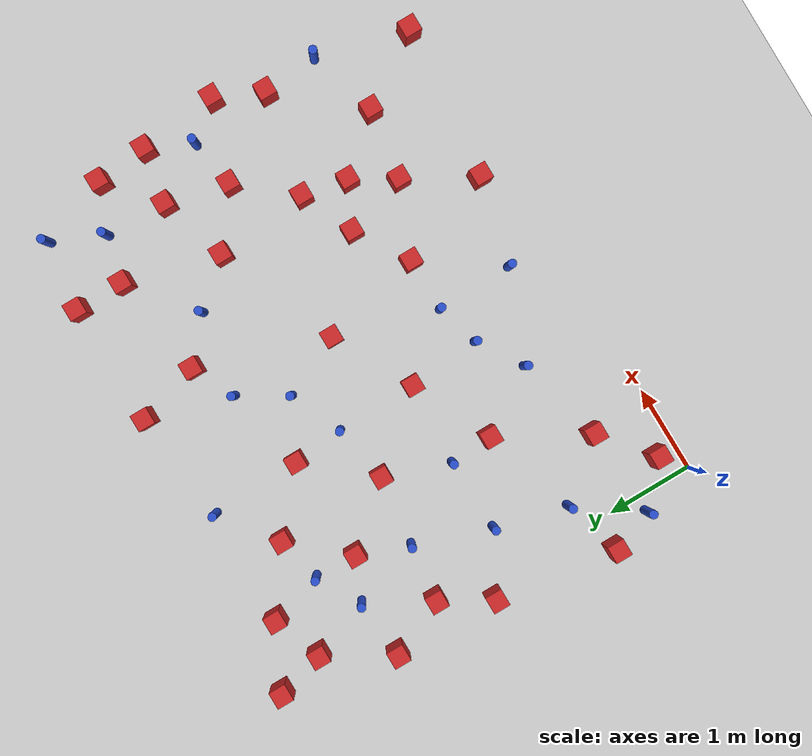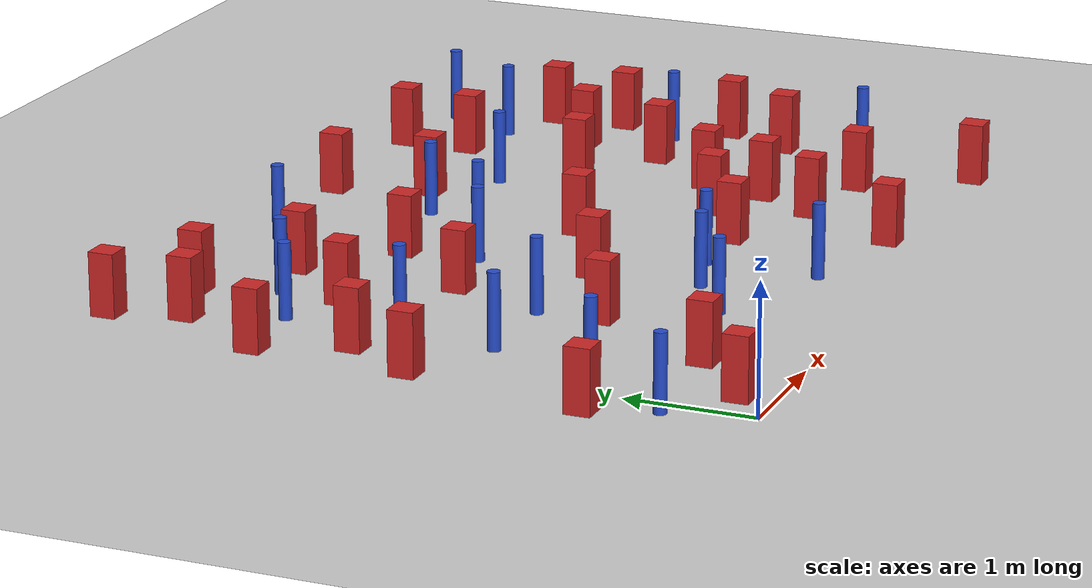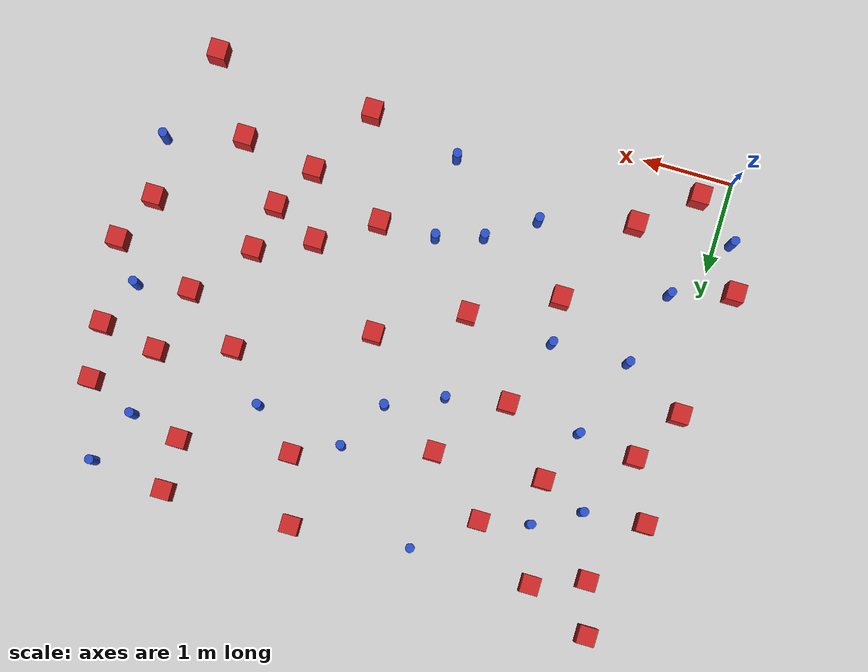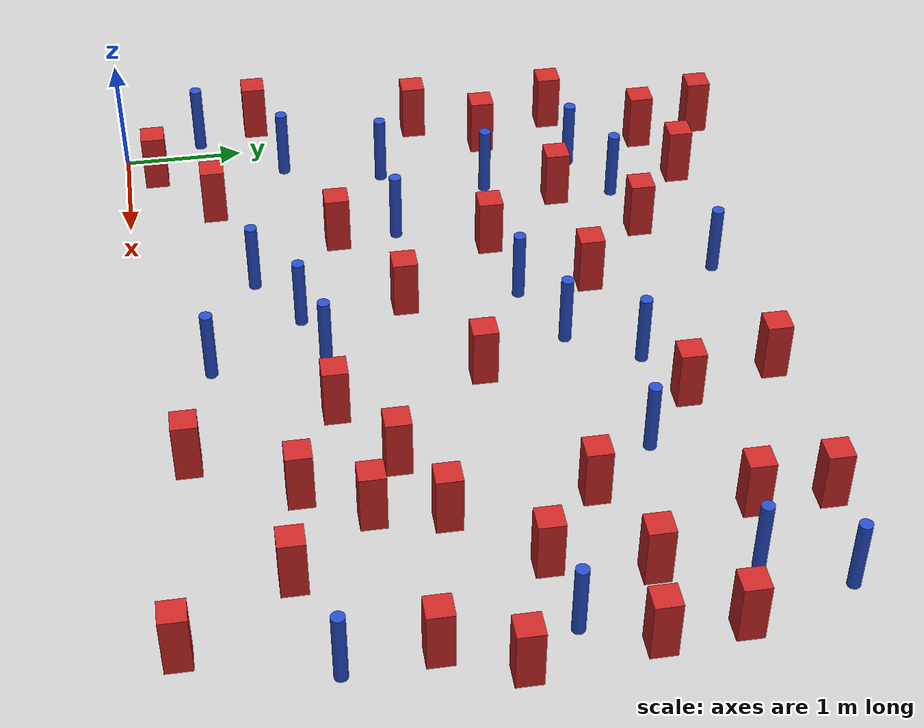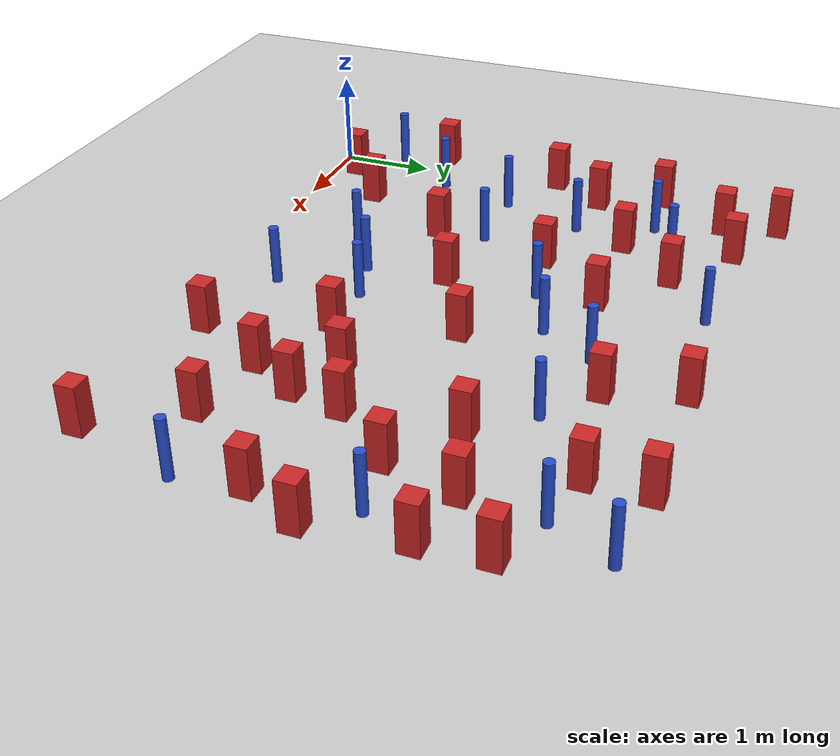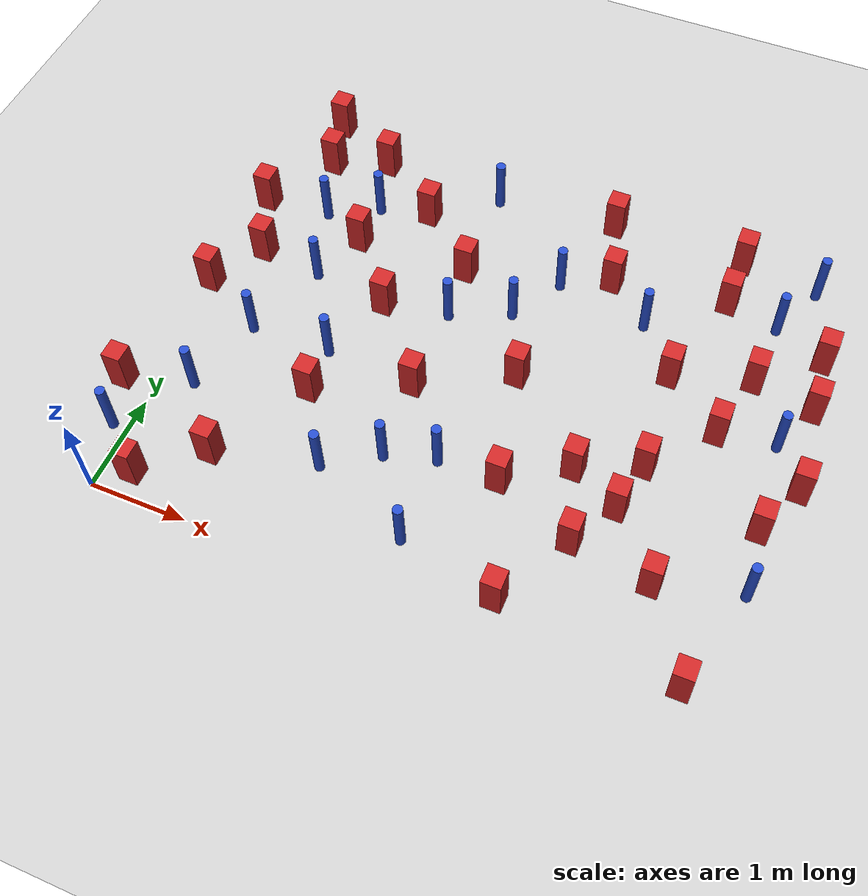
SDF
<sdf version="1.6">
 <world name="default">
  <model name="ground_plane">
   <static>1</static>
   <link name="link">
    <collision name="collision">
     <geometry><plane><normal>0 0 1</normal><size>100 100</size></plane></geometry>
     <surface><friction><ode><mu>100</mu><mu2>50</mu2></ode></friction></surface>
    </collision>
    <visual name="visual">
     <cast_shadows>0</cast_shadows>
     <geometry><plane><normal>0 0 1</normal><size>100 100</size></plane></geometry>
     <material>
      <ambient>1.0 1.0 1.0 1.0</ambient>
      <diffuse>0.8 0.8 0.8 1.0</diffuse>
      <specular>0.01 0.01 0.01 1.000000</specular>
     </material>
    </visual>
   </link>
  </model>
  <model name="square_post_obstacle7">
   <static>true</static>
   <pose>5.32056490058 2.76334823413 -4.36207812815e-07 3.75137919937e-06 9.77721102514e-07 2.47381364184e-05</pose>
   <link name="link">
    <pose>0 0 0.25 0 -0 0</pose>
    <inertial>
     <mass>100</mass>
     <inertia>
      <ixx>0.166667</ixx>
      <ixy>0</ixy>
      <ixz>0</ixz>
      <iyy>0.166667</iyy>
      <iyz>0</iyz>
      <izz>0.166667</izz>
     </inertia>
    </inertial>
    <collision name="collision"><geometry><box><size>.2 .2 .5</size></box></geometry></collision>
    <visual name="visual">
     <geometry><box><size>.2 .2 .5</size></box></geometry>
     <material>
      <script><name>Gazebo/Red</name><uri>file://media/materials/scripts/gazebo.material</uri></script>
     </material>
    </visual>
   </link>
  </model>
  <model name="square_post_obstacle9">
   <static>true</static>
   <pose>1.68778716582 2.98436826261 -4.36207812815e-07 3.75137919937e-06 9.77721102514e-07 2.47381364184e-05</pose>
   <link name="link">
    <pose>0 0 0.25 0 -0 0</pose>
    <inertial>
     <mass>100</mass>
     <inertia>
      <ixx>0.166667</ixx>
      <ixy>0</ixy>
      <ixz>0</ixz>
      <iyy>0.166667</iyy>
      <iyz>0</iyz>
      <izz>0.166667</izz>
     </inertia>
    </inertial>
    <collision name="collision"><geometry><box><size>.2 .2 .5</size></box></geometry></collision>
    <visual name="visual">
     <geometry><box><size>.2 .2 .5</size></box></geometry>
     <material>
      <script><name>Gazebo/Red</name><uri>file://media/materials/scripts/gazebo.material</uri></script>
     </material>
    </visual>
   </link>
  </model>
  <model name="square_post_obstacle17">
   <static>true</static>
   <pose>3.2908703948 2.66182966471 -4.36207812815e-07 3.75137919937e-06 9.77721102514e-07 2.47381364184e-05</pose>
   <link name="link">
    <pose>0 0 0.25 0 -0 0</pose>
    <inertial>
     <mass>100</mass>
     <inertia>
      <ixx>0.166667</ixx>
      <ixy>0</ixy>
      <ixz>0</ixz>
      <iyy>0.166667</iyy>
      <iyz>0</iyz>
      <izz>0.166667</izz>
     </inertia>
    </inertial>
    <collision name="collision"><geometry><box><size>.2 .2 .5</size></box></geometry></collision>
    <visual name="visual">
     <geometry><box><size>.2 .2 .5</size></box></geometry>
     <material>
      <script><name>Gazebo/Red</name><uri>file://media/materials/scripts/gazebo.material</uri></script>
     </material>
    </visual>
   </link>
  </model>
  <model name="pole_obstacle23">
   <static>true</static>
   <pose>2.94145108992 1.47407191343 -3.09024884793e-07 -7.19054271912e-07 -2.11315075122e-07 -1.93935509259e-07</pose>
   <link name="link">
    <pose>0 0 0.3 0 -0 0</pose>
    <inertial>
     <mass>1</mass>
     <inertia><ixx>0.145833</ixx><ixy>0</ixy><ixz>0</ixz><iyy>0.145833</iyy><iyz>0</iyz><izz>0.125</izz></inertia>
    </inertial>
    <collision name="collision">
     <geometry><cylinder><radius>0.05</radius><length>.6</length></cylinder></geometry>
    </collision>
    <visual name="visual">
     <geometry><cylinder><radius>0.05</radius><length>.6</length></cylinder></geometry>
     <material>
      <script><name>Gazebo/Blue</name><uri>file://media/materials/scripts/gazebo.material</uri></script>
     </material>
    </visual>
   </link>
  </model>
  <model name="pole_obstacle24">
   <static>true</static>
   <pose>1.41293197032 2.23322964332 -3.09024884793e-07 -7.19054271912e-07 -2.11315075132e-07 -1.93935509263e-07</pose>
   <link name="link">
    <pose>0 0 0.3 0 -0 0</pose>
    <inertial>
     <mass>1</mass>
     <inertia><ixx>0.145833</ixx><ixy>0</ixy><ixz>0</ixz><iyy>0.145833</iyy><iyz>0</iyz><izz>0.125</izz></inertia>
    </inertial>
    <collision name="collision">
     <geometry><cylinder><radius>0.05</radius><length>.6</length></cylinder></geometry>
    </collision>
    <visual name="visual">
     <geometry><cylinder><radius>0.05</radius><length>.6</length></cylinder></geometry>
     <material>
      <script><name>Gazebo/Blue</name><uri>file://media/materials/scripts/gazebo.material</uri></script>
     </material>
    </visual>
   </link>
  </model>
  <model name="pole_obstacle31">
   <static>true</static>
   <pose>4.26516770433 3.75348475248 -3.09024884793e-07 -7.19054271912e-07 -2.11315075144e-07 -1.93935509269e-07</pose>
   <link name="link">
    <pose>0 0 0.3 0 -0 0</pose>
    <inertial>
     <mass>1</mass>
     <inertia><ixx>0.145833</ixx><ixy>0</ixy><ixz>0</ixz><iyy>0.145833</iyy><iyz>0</iyz><izz>0.125</izz></inertia>
    </inertial>
    <collision name="collision">
     <geometry><cylinder><radius>0.05</radius><length>.6</length></cylinder></geometry>
    </collision>
    <visual name="visual">
     <geometry><cylinder><radius>0.05</radius><length>.6</length></cylinder></geometry>
     <material>
      <script><name>Gazebo/Blue</name><uri>file://media/materials/scripts/gazebo.material</uri></script>
     </material>
    </visual>
   </link>
  </model>
  <model name="square_post_obstacle24">
   <static>true</static>
   <pose>0.205083006094 5.14433365972 -4.36207812815e-07 3.75137919937e-06 9.77721102514e-07 2.47381364184e-05</pose>
   <link name="link">
    <pose>0 0 0.25 0 -0 0</pose>
    <inertial>
     <mass>100</mass>
     <inertia>
      <ixx>0.166667</ixx>
      <ixy>0</ixy>
      <ixz>0</ixz>
      <iyy>0.166667</iyy>
      <iyz>0</iyz>
      <izz>0.166667</izz>
     </inertia>
    </inertial>
    <collision name="collision"><geometry><box><size>.2 .2 .5</size></box></geometry></collision>
    <visual name="visual">
     <geometry><box><size>.2 .2 .5</size></box></geometry>
     <material>
      <script><name>Gazebo/Red</name><uri>file://media/materials/scripts/gazebo.material</uri></script>
     </material>
    </visual>
   </link>
  </model>
  <model name="pole_obstacle36">
   <static>true</static>
   <pose>2.9625027754 3.37753146015 -3.09024884793e-07 -7.19054271912e-07 -2.11315075144e-07 -1.93935509271e-07</pose>
   <link name="link">
    <pose>0 0 0.3 0 -0 0</pose>
    <inertial>
     <mass>1</mass>
     <inertia><ixx>0.145833</ixx><ixy>0</ixy><ixz>0</ixz><iyy>0.145833</iyy><iyz>0</iyz><izz>0.125</izz></inertia>
    </inertial>
    <collision name="collision">
     <geometry><cylinder><radius>0.05</radius><length>.6</length></cylinder></geometry>
    </collision>
    <visual name="visual">
     <geometry><cylinder><radius>0.05</radius><length>.6</length></cylinder></geometry>
     <material>
      <script><name>Gazebo/Blue</name><uri>file://media/materials/scripts/gazebo.material</uri></script>
     </material>
    </visual>
   </link>
  </model>
  <model name="pole_obstacle37">
   <static>true</static>
   <pose>1.91844083741 0.993248469439 -3.09024884793e-07 -7.19054271912e-07 -2.11315075124e-07 -1.9393550926e-07</pose>
   <link name="link">
    <pose>0 0 0.3 0 -0 0</pose>
    <inertial>
     <mass>1</mass>
     <inertia><ixx>0.145833</ixx><ixy>0</ixy><ixz>0</ixz><iyy>0.145833</iyy><iyz>0</iyz><izz>0.125</izz></inertia>
    </inertial>
    <collision name="collision">
     <geometry><cylinder><radius>0.05</radius><length>.6</length></cylinder></geometry>
    </collision>
    <visual name="visual">
     <geometry><cylinder><radius>0.05</radius><length>.6</length></cylinder></geometry>
     <material>
      <script><name>Gazebo/Blue</name><uri>file://media/materials/scripts/gazebo.material</uri></script>
     </material>
    </visual>
   </link>
  </model>
  <model name="pole_obstacle39">
   <static>true</static>
   <pose>3.2877511063 3.92574632654 -3.09024884793e-07 -7.19054271912e-07 -2.11315075144e-07 -1.93935509271e-07</pose>
   <link name="link">
    <pose>0 0 0.3 0 -0 0</pose>
    <inertial>
     <mass>1</mass>
     <inertia><ixx>0.145833</ixx><ixy>0</ixy><ixz>0</ixz><iyy>0.145833</iyy><iyz>0</iyz><izz>0.125</izz></inertia>
    </inertial>
    <collision name="collision">
     <geometry><cylinder><radius>0.05</radius><length>.6</length></cylinder></geometry>
    </collision>
    <visual name="visual">
     <geometry><cylinder><radius>0.05</radius><length>.6</length></cylinder></geometry>
     <material>
      <script><name>Gazebo/Blue</name><uri>file://media/materials/scripts/gazebo.material</uri></script>
     </material>
    </visual>
   </link>
  </model>
  <model name="square_post_obstacle31">
   <static>true</static>
   <pose>3.56515329275 1.48128722133 -4.36207812815e-07 3.75137919937e-06 9.77721102514e-07 2.47381364184e-05</pose>
   <link name="link">
    <pose>0 0 0.25 0 -0 0</pose>
    <inertial>
     <mass>100</mass>
     <inertia>
      <ixx>0.166667</ixx>
      <ixy>0</ixy>
      <ixz>0</ixz>
      <iyy>0.166667</iyy>
      <iyz>0</iyz>
      <izz>0.166667</izz>
     </inertia>
    </inertial>
    <collision name="collision"><geometry><box><size>.2 .2 .5</size></box></geometry></collision>
    <visual name="visual">
     <geometry><box><size>.2 .2 .5</size></box></geometry>
     <material>
      <script><name>Gazebo/Red</name><uri>file://media/materials/scripts/gazebo.material</uri></script>
     </material>
    </visual>
   </link>
  </model>
  <model name="pole_obstacle43">
   <static>true</static>
   <pose>5.54117662202 4.21828675575 -3.09024884793e-07 -7.19054271911e-07 -2.1131507516e-07 -1.93935509277e-07</pose>
   <link name="link">
    <pose>0 0 0.3 0 -0 0</pose>
    <inertial>
     <mass>1</mass>
     <inertia><ixx>0.145833</ixx><ixy>0</ixy><ixz>0</ixz><iyy>0.145833</iyy><iyz>0</iyz><izz>0.125</izz></inertia>
    </inertial>
    <collision name="collision">
     <geometry><cylinder><radius>0.05</radius><length>.6</length></cylinder></geometry>
    </collision>
    <visual name="visual">
     <geometry><cylinder><radius>0.05</radius><length>.6</length></cylinder></geometry>
     <material>
      <script><name>Gazebo/Blue</name><uri>file://media/materials/scripts/gazebo.material</uri></script>
     </material>
    </visual>
   </link>
  </model>
  <model name="pole_obstacle53">
   <static>true</static>
   <pose>2.95618056384 0.574802427145 -3.09024884793e-07 -7.19054271913e-07 -2.1131507512e-07 -1.93935509259e-07</pose>
   <link name="link">
    <pose>0 0 0.3 0 -0 0</pose>
    <inertial>
     <mass>1</mass>
     <inertia><ixx>0.145833</ixx><ixy>0</ixy><ixz>0</ixz><iyy>0.145833</iyy><iyz>0</iyz><izz>0.125</izz></inertia>
    </inertial>
    <collision name="collision">
     <geometry><cylinder><radius>0.05</radius><length>.6</length></cylinder></geometry>
    </collision>
    <visual name="visual">
     <geometry><cylinder><radius>0.05</radius><length>.6</length></cylinder></geometry>
     <material>
      <script><name>Gazebo/Blue</name><uri>file://media/materials/scripts/gazebo.material</uri></script>
     </material>
    </visual>
   </link>
  </model>
  <model name="square_post_obstacle50">
   <static>true</static>
   <pose>0.931498825815 4.79083160064 -4.36207812815e-07 3.75137919937e-06 9.77721102514e-07 2.47381364184e-05</pose>
   <link name="link">
    <pose>0 0 0.25 0 -0 0</pose>
    <inertial>
     <mass>100</mass>
     <inertia>
      <ixx>0.166667</ixx>
      <ixy>0</ixy>
      <ixz>0</ixz>
      <iyy>0.166667</iyy>
      <iyz>0</iyz>
      <izz>0.166667</izz>
     </inertia>
    </inertial>
    <collision name="collision"><geometry><box><size>.2 .2 .5</size></box></geometry></collision>
    <visual name="visual">
     <geometry><box><size>.2 .2 .5</size></box></geometry>
     <material>
      <script><name>Gazebo/Red</name><uri>file://media/materials/scripts/gazebo.material</uri></script>
     </material>
    </visual>
   </link>
  </model>
  <model name="square_post_obstacle53">
   <static>true</static>
   <pose>2.37365203175 2.17267590259 -4.36207812815e-07 3.75137919937e-06 9.77721102514e-07 2.47381364184e-05</pose>
   <link name="link">
    <pose>0 0 0.25 0 -0 0</pose>
    <inertial>
     <mass>100</mass>
     <inertia>
      <ixx>0.166667</ixx>
      <ixy>0</ixy>
      <ixz>0</ixz>
      <iyy>0.166667</iyy>
      <iyz>0</iyz>
      <izz>0.166667</izz>
     </inertia>
    </inertial>
    <collision name="collision"><geometry><box><size>.2 .2 .5</size></box></geometry></collision>
    <visual name="visual">
     <geometry><box><size>.2 .2 .5</size></box></geometry>
     <material>
      <script><name>Gazebo/Red</name><uri>file://media/materials/scripts/gazebo.material</uri></script>
     </material>
    </visual>
   </link>
  </model>
  <model name="square_post_obstacle58">
   <static>true</static>
   <pose>0.311683820872 0.252475611081 -4.36207812815e-07 3.75137919937e-06 9.77721102514e-07 2.47381364184e-05</pose>
   <link name="link">
    <pose>0 0 0.25 0 -0 0</pose>
    <inertial>
     <mass>100</mass>
     <inertia>
      <ixx>0.166667</ixx>
      <ixy>0</ixy>
      <ixz>0</ixz>
      <iyy>0.166667</iyy>
      <iyz>0</iyz>
      <izz>0.166667</izz>
     </inertia>
    </inertial>
    <collision name="collision"><geometry><box><size>.2 .2 .5</size></box></geometry></collision>
    <visual name="visual">
     <geometry><box><size>.2 .2 .5</size></box></geometry>
     <material>
      <script><name>Gazebo/Red</name><uri>file://media/materials/scripts/gazebo.material</uri></script>
     </material>
    </visual>
   </link>
  </model>
  <model name="square_post_obstacle60">
   <static>true</static>
   <pose>5.98272683494 1.8983520459 -4.36207812815e-07 3.75137919937e-06 9.77721102514e-07 2.47381364184e-05</pose>
   <link name="link">
    <pose>0 0 0.25 0 -0 0</pose>
    <inertial>
     <mass>100</mass>
     <inertia>
      <ixx>0.166667</ixx>
      <ixy>0</ixy>
      <ixz>0</ixz>
      <iyy>0.166667</iyy>
      <iyz>0</iyz>
      <izz>0.166667</izz>
     </inertia>
    </inertial>
    <collision name="collision"><geometry><box><size>.2 .2 .5</size></box></geometry></collision>
    <visual name="visual">
     <geometry><box><size>.2 .2 .5</size></box></geometry>
     <material>
      <script><name>Gazebo/Red</name><uri>file://media/materials/scripts/gazebo.material</uri></script>
     </material>
    </visual>
   </link>
  </model>
  <model name="square_post_obstacle63">
   <static>true</static>
   <pose>6.07518268174 3.97944466218 -4.36207812815e-07 3.75137919937e-06 9.77721102514e-07 2.47381364184e-05</pose>
   <link name="link">
    <pose>0 0 0.25 0 -0 0</pose>
    <inertial>
     <mass>100</mass>
     <inertia>
      <ixx>0.166667</ixx>
      <ixy>0</ixy>
      <ixz>0</ixz>
      <iyy>0.166667</iyy>
      <iyz>0</iyz>
      <izz>0.166667</izz>
     </inertia>
    </inertial>
    <collision name="collision"><geometry><box><size>.2 .2 .5</size></box></geometry></collision>
    <visual name="visual">
     <geometry><box><size>.2 .2 .5</size></box></geometry>
     <material>
      <script><name>Gazebo/Red</name><uri>file://media/materials/scripts/gazebo.material</uri></script>
     </material>
    </visual>
   </link>
  </model>
  <model name="square_post_obstacle64">
   <static>true</static>
   <pose>1.09685866922 3.67038708228 -4.36207812815e-07 3.75137919937e-06 9.77721102514e-07 2.47381364184e-05</pose>
   <link name="link">
    <pose>0 0 0.25 0 -0 0</pose>
    <inertial>
     <mass>100</mass>
     <inertia>
      <ixx>0.166667</ixx>
      <ixy>0</ixy>
      <ixz>0</ixz>
      <iyy>0.166667</iyy>
      <iyz>0</iyz>
      <izz>0.166667</izz>
     </inertia>
    </inertial>
    <collision name="collision"><geometry><box><size>.2 .2 .5</size></box></geometry></collision>
    <visual name="visual">
     <geometry><box><size>.2 .2 .5</size></box></geometry>
     <material>
      <script><name>Gazebo/Red</name><uri>file://media/materials/scripts/gazebo.material</uri></script>
     </material>
    </visual>
   </link>
  </model>
  <model name="pole_obstacle76">
   <static>true</static>
   <pose>6.05503213505 1.23810179971 -3.09024884793e-07 -7.19054271912e-07 -2.11315075124e-07 -1.93935509261e-07</pose>
   <link name="link">
    <pose>0 0 0.3 0 -0 0</pose>
    <inertial>
     <mass>1</mass>
     <inertia><ixx>0.145833</ixx><ixy>0</ixy><ixz>0</ixz><iyy>0.145833</iyy><iyz>0</iyz><izz>0.125</izz></inertia>
    </inertial>
    <collision name="collision">
     <geometry><cylinder><radius>0.05</radius><length>.6</length></cylinder></geometry>
    </collision>
    <visual name="visual">
     <geometry><cylinder><radius>0.05</radius><length>.6</length></cylinder></geometry>
     <material>
      <script><name>Gazebo/Blue</name><uri>file://media/materials/scripts/gazebo.material</uri></script>
     </material>
    </visual>
   </link>
  </model>
  <model name="square_post_obstacle66">
   <static>true</static>
   <pose>4.40512397934 1.13131228076 -4.36207812815e-07 3.75137919937e-06 9.77721102514e-07 2.47381364184e-05</pose>
   <link name="link">
    <pose>0 0 0.25 0 -0 0</pose>
    <inertial>
     <mass>100</mass>
     <inertia>
      <ixx>0.166667</ixx>
      <ixy>0</ixy>
      <ixz>0</ixz>
      <iyy>0.166667</iyy>
      <iyz>0</iyz>
      <izz>0.166667</izz>
     </inertia>
    </inertial>
    <collision name="collision"><geometry><box><size>.2 .2 .5</size></box></geometry></collision>
    <visual name="visual">
     <geometry><box><size>.2 .2 .5</size></box></geometry>
     <material>
      <script><name>Gazebo/Red</name><uri>file://media/materials/scripts/gazebo.material</uri></script>
     </material>
    </visual>
   </link>
  </model>
  <model name="pole_obstacle79">
   <static>true</static>
   <pose>2.35565209858 3.11388876558 -3.09024884793e-07 -7.19054271912e-07 -2.11315075144e-07 -1.93935509271e-07</pose>
   <link name="link">
    <pose>0 0 0.3 0 -0 0</pose>
    <inertial>
     <mass>1</mass>
     <inertia><ixx>0.145833</ixx><ixy>0</ixy><ixz>0</ixz><iyy>0.145833</iyy><iyz>0</iyz><izz>0.125</izz></inertia>
    </inertial>
    <collision name="collision">
     <geometry><cylinder><radius>0.05</radius><length>.6</length></cylinder></geometry>
    </collision>
    <visual name="visual">
     <geometry><cylinder><radius>0.05</radius><length>.6</length></cylinder></geometry>
     <material>
      <script><name>Gazebo/Blue</name><uri>file://media/materials/scripts/gazebo.material</uri></script>
     </material>
    </visual>
   </link>
  </model>
  <model name="square_post_obstacle67">
   <static>true</static>
   <pose>5.75724764635 0.190540248701 -4.36207812815e-07 3.75137919937e-06 9.77721102514e-07 2.47381364184e-05</pose>
   <link name="link">
    <pose>0 0 0.25 0 -0 0</pose>
    <inertial>
     <mass>100</mass>
     <inertia>
      <ixx>0.166667</ixx>
      <ixy>0</ixy>
      <ixz>0</ixz>
      <iyy>0.166667</iyy>
      <iyz>0</iyz>
      <izz>0.166667</izz>
     </inertia>
    </inertial>
    <collision name="collision"><geometry><box><size>.2 .2 .5</size></box></geometry></collision>
    <visual name="visual">
     <geometry><box><size>.2 .2 .5</size></box></geometry>
     <material>
      <script><name>Gazebo/Red</name><uri>file://media/materials/scripts/gazebo.material</uri></script>
     </material>
    </visual>
   </link>
  </model>
  <model name="square_post_obstacle72">
   <static>true</static>
   <pose>0.355731774095 4.58084459905 -4.36207812815e-07 3.75137919937e-06 9.77721102514e-07 2.47381364184e-05</pose>
   <link name="link">
    <pose>0 0 0.25 0 -0 0</pose>
    <inertial>
     <mass>100</mass>
     <inertia>
      <ixx>0.166667</ixx>
      <ixy>0</ixy>
      <ixz>0</ixz>
      <iyy>0.166667</iyy>
      <iyz>0</iyz>
      <izz>0.166667</izz>
     </inertia>
    </inertial>
    <collision name="collision"><geometry><box><size>.2 .2 .5</size></box></geometry></collision>
    <visual name="visual">
     <geometry><box><size>.2 .2 .5</size></box></geometry>
     <material>
      <script><name>Gazebo/Red</name><uri>file://media/materials/scripts/gazebo.material</uri></script>
     </material>
    </visual>
   </link>
  </model>
  <model name="pole_obstacle93">
   <static>true</static>
   <pose>0.339353805725 1.37479998512 -3.09024884793e-07 -7.19054271912e-07 -2.11315075135e-07 -1.93935509265e-07</pose>
   <link name="link">
    <pose>0 0 0.3 0 -0 0</pose>
    <inertial>
     <mass>1</mass>
     <inertia><ixx>0.145833</ixx><ixy>0</ixy><ixz>0</ixz><iyy>0.145833</iyy><iyz>0</iyz><izz>0.125</izz></inertia>
    </inertial>
    <collision name="collision">
     <geometry><cylinder><radius>0.05</radius><length>.6</length></cylinder></geometry>
    </collision>
    <visual name="visual">
     <geometry><cylinder><radius>0.05</radius><length>.6</length></cylinder></geometry>
     <material>
      <script><name>Gazebo/Blue</name><uri>file://media/materials/scripts/gazebo.material</uri></script>
     </material>
    </visual>
   </link>
  </model>
  <model name="pole_obstacle100">
   <static>true</static>
   <pose>0.868200592601 3.08857561466 -3.09024884793e-07 -7.19054271912e-07 -2.11315075129e-07 -1.93935509263e-07</pose>
   <link name="link">
    <pose>0 0 0.3 0 -0 0</pose>
    <inertial>
     <mass>1</mass>
     <inertia><ixx>0.145833</ixx><ixy>0</ixy><ixz>0</ixz><iyy>0.145833</iyy><iyz>0</iyz><izz>0.125</izz></inertia>
    </inertial>
    <collision name="collision">
     <geometry><cylinder><radius>0.05</radius><length>.6</length></cylinder></geometry>
    </collision>
    <visual name="visual">
     <geometry><cylinder><radius>0.05</radius><length>.6</length></cylinder></geometry>
     <material>
      <script><name>Gazebo/Blue</name><uri>file://media/materials/scripts/gazebo.material</uri></script>
     </material>
    </visual>
   </link>
  </model>
  <model name="square_post_obstacle92">
   <static>true</static>
   <pose>0.89284038301 0.729564855219 -4.36207812815e-07 3.75137919937e-06 9.77721102514e-07 2.47381364184e-05</pose>
   <link name="link">
    <pose>0 0 0.25 0 -0 0</pose>
    <inertial>
     <mass>100</mass>
     <inertia>
      <ixx>0.166667</ixx>
      <ixy>0</ixy>
      <ixz>0</ixz>
      <iyy>0.166667</iyy>
      <iyz>0</iyz>
      <izz>0.166667</izz>
     </inertia>
    </inertial>
    <collision name="collision"><geometry><box><size>.2 .2 .5</size></box></geometry></collision>
    <visual name="visual">
     <geometry><box><size>.2 .2 .5</size></box></geometry>
     <material>
      <script><name>Gazebo/Red</name><uri>file://media/materials/scripts/gazebo.material</uri></script>
     </material>
    </visual>
   </link>
  </model>
  <model name="square_post_obstacle95">
   <static>true</static>
   <pose>3.97199509565 0.347979895242 -4.36207812815e-07 3.75137919937e-06 9.77721102514e-07 2.47381364184e-05</pose>
   <link name="link">
    <pose>0 0 0.25 0 -0 0</pose>
    <inertial>
     <mass>100</mass>
     <inertia>
      <ixx>0.166667</ixx>
      <ixy>0</ixy>
      <ixz>0</ixz>
      <iyy>0.166667</iyy>
      <iyz>0</iyz>
      <izz>0.166667</izz>
     </inertia>
    </inertial>
    <collision name="collision"><geometry><box><size>.2 .2 .5</size></box></geometry></collision>
    <visual name="visual">
     <geometry><box><size>.2 .2 .5</size></box></geometry>
     <material>
      <script><name>Gazebo/Red</name><uri>file://media/materials/scripts/gazebo.material</uri></script>
     </material>
    </visual>
   </link>
  </model>
  <model name="square_post_obstacle107">
   <static>true</static>
   <pose>3.78435413487 4.15735487261 -4.36207812815e-07 3.75137919937e-06 9.77721102514e-07 2.47381364184e-05</pose>
   <link name="link">
    <pose>0 0 0.25 0 -0 0</pose>
    <inertial>
     <mass>100</mass>
     <inertia>
      <ixx>0.166667</ixx>
      <ixy>0</ixy>
      <ixz>0</ixz>
      <iyy>0.166667</iyy>
      <iyz>0</iyz>
      <izz>0.166667</izz>
     </inertia>
    </inertial>
    <collision name="collision"><geometry><box><size>.2 .2 .5</size></box></geometry></collision>
    <visual name="visual">
     <geometry><box><size>.2 .2 .5</size></box></geometry>
     <material>
      <script><name>Gazebo/Red</name><uri>file://media/materials/scripts/gazebo.material</uri></script>
     </material>
    </visual>
   </link>
  </model>
  <model name="square_post_obstacle114">
   <static>true</static>
   <pose>2.30782447004 3.70807911189 -4.36207812815e-07 3.75137919937e-06 9.77721102514e-07 2.47381364184e-05</pose>
   <link name="link">
    <pose>0 0 0.25 0 -0 0</pose>
    <inertial>
     <mass>100</mass>
     <inertia>
      <ixx>0.166667</ixx>
      <ixy>0</ixy>
      <ixz>0</ixz>
      <iyy>0.166667</iyy>
      <iyz>0</iyz>
      <izz>0.166667</izz>
     </inertia>
    </inertial>
    <collision name="collision"><geometry><box><size>.2 .2 .5</size></box></geometry></collision>
    <visual name="visual">
     <geometry><box><size>.2 .2 .5</size></box></geometry>
     <material>
      <script><name>Gazebo/Red</name><uri>file://media/materials/scripts/gazebo.material</uri></script>
     </material>
    </visual>
   </link>
  </model>
  <model name="pole_obstacle123">
   <static>true</static>
   <pose>0.598401428648 3.88924146206 -3.09024884793e-07 -7.19054271912e-07 -2.11315075129e-07 -1.93935509263e-07</pose>
   <link name="link">
    <pose>0 0 0.3 0 -0 0</pose>
    <inertial>
     <mass>1</mass>
     <inertia><ixx>0.145833</ixx><ixy>0</ixy><ixz>0</ixz><iyy>0.145833</iyy><iyz>0</iyz><izz>0.125</izz></inertia>
    </inertial>
    <collision name="collision">
     <geometry><cylinder><radius>0.05</radius><length>.6</length></cylinder></geometry>
    </collision>
    <visual name="visual">
     <geometry><cylinder><radius>0.05</radius><length>.6</length></cylinder></geometry>
     <material>
      <script><name>Gazebo/Blue</name><uri>file://media/materials/scripts/gazebo.material</uri></script>
     </material>
    </visual>
   </link>
  </model>
  <model name="square_post_obstacle123">
   <static>true</static>
   <pose>6.22774642788 2.44487039621 -4.36207812815e-07 3.75137919937e-06 9.77721102514e-07 2.47381364184e-05</pose>
   <link name="link">
    <pose>0 0 0.25 0 -0 0</pose>
    <inertial>
     <mass>100</mass>
     <inertia>
      <ixx>0.166667</ixx>
      <ixy>0</ixy>
      <ixz>0</ixz>
      <iyy>0.166667</iyy>
      <iyz>0</iyz>
      <izz>0.166667</izz>
     </inertia>
    </inertial>
    <collision name="collision"><geometry><box><size>.2 .2 .5</size></box></geometry></collision>
    <visual name="visual">
     <geometry><box><size>.2 .2 .5</size></box></geometry>
     <material>
      <script><name>Gazebo/Red</name><uri>file://media/materials/scripts/gazebo.material</uri></script>
     </material>
    </visual>
   </link>
  </model>
  <model name="pole_obstacle132">
   <static>true</static>
   <pose>-0.160465326585 0.659335285239 -3.09024884793e-07 -7.19054271912e-07 -2.11315075144e-07 -1.9393550927e-07</pose>
   <link name="link">
    <pose>0 0 0.3 0 -0 0</pose>
    <inertial>
     <mass>1</mass>
     <inertia><ixx>0.145833</ixx><ixy>0</ixy><ixz>0</ixz><iyy>0.145833</iyy><iyz>0</iyz><izz>0.125</izz></inertia>
    </inertial>
    <collision name="collision">
     <geometry><cylinder><radius>0.05</radius><length>.6</length></cylinder></geometry>
    </collision>
    <visual name="visual">
     <geometry><cylinder><radius>0.05</radius><length>.6</length></cylinder></geometry>
     <material>
      <script><name>Gazebo/Blue</name><uri>file://media/materials/scripts/gazebo.material</uri></script>
     </material>
    </visual>
   </link>
  </model>
  <model name="pole_obstacle147">
   <static>true</static>
   <pose>5.80797381007 4.81614942576 -3.09024884793e-07 -7.19054271911e-07 -2.1131507516e-07 -1.93935509277e-07</pose>
   <link name="link">
    <pose>0 0 0.3 0 -0 0</pose>
    <inertial>
     <mass>1</mass>
     <inertia><ixx>0.145833</ixx><ixy>0</ixy><ixz>0</ixz><iyy>0.145833</iyy><iyz>0</iyz><izz>0.125</izz></inertia>
    </inertial>
    <collision name="collision">
     <geometry><cylinder><radius>0.05</radius><length>.6</length></cylinder></geometry>
    </collision>
    <visual name="visual">
     <geometry><cylinder><radius>0.05</radius><length>.6</length></cylinder></geometry>
     <material>
      <script><name>Gazebo/Blue</name><uri>file://media/materials/scripts/gazebo.material</uri></script>
     </material>
    </visual>
   </link>
  </model>
  <model name="square_post_obstacle141">
   <static>true</static>
   <pose>1.45015220085 1.72946466085 -4.36207812815e-07 3.75137919937e-06 9.77721102514e-07 2.47381364184e-05</pose>
   <link name="link">
    <pose>0 0 0.25 0 -0 0</pose>
    <inertial>
     <mass>100</mass>
     <inertia>
      <ixx>0.166667</ixx>
      <ixy>0</ixy>
      <ixz>0</ixz>
      <iyy>0.166667</iyy>
      <iyz>0</iyz>
      <izz>0.166667</izz>
     </inertia>
    </inertial>
    <collision name="collision"><geometry><box><size>.2 .2 .5</size></box></geometry></collision>
    <visual name="visual">
     <geometry><box><size>.2 .2 .5</size></box></geometry>
     <material>
      <script><name>Gazebo/Red</name><uri>file://media/materials/scripts/gazebo.material</uri></script>
     </material>
    </visual>
   </link>
  </model>
  <model name="square_post_obstacle142">
   <static>true</static>
   <pose>4.98526858437 4.33771972588 -4.36207812815e-07 3.75137919937e-06 9.77721102514e-07 2.47381364184e-05</pose>
   <link name="link">
    <pose>0 0 0.25 0 -0 0</pose>
    <inertial>
     <mass>100</mass>
     <inertia>
      <ixx>0.166667</ixx>
      <ixy>0</ixy>
      <ixz>0</ixz>
      <iyy>0.166667</iyy>
      <iyz>0</iyz>
      <izz>0.166667</izz>
     </inertia>
    </inertial>
    <collision name="collision"><geometry><box><size>.2 .2 .5</size></box></geometry></collision>
    <visual name="visual">
     <geometry><box><size>.2 .2 .5</size></box></geometry>
     <material>
      <script><name>Gazebo/Red</name><uri>file://media/materials/scripts/gazebo.material</uri></script>
     </material>
    </visual>
   </link>
  </model>
  <model name="square_post_obstacle149">
   <static>true</static>
   <pose>4.17773433431 1.87041860005 -4.36207812815e-07 3.75137919937e-06 9.77721102514e-07 2.47381364184e-05</pose>
   <link name="link">
    <pose>0 0 0.25 0 -0 0</pose>
    <inertial>
     <mass>100</mass>
     <inertia>
      <ixx>0.166667</ixx>
      <ixy>0</ixy>
      <ixz>0</ixz>
      <iyy>0.166667</iyy>
      <iyz>0</iyz>
      <izz>0.166667</izz>
     </inertia>
    </inertial>
    <collision name="collision"><geometry><box><size>.2 .2 .5</size></box></geometry></collision>
    <visual name="visual">
     <geometry><box><size>.2 .2 .5</size></box></geometry>
     <material>
      <script><name>Gazebo/Red</name><uri>file://media/materials/scripts/gazebo.material</uri></script>
     </material>
    </visual>
   </link>
  </model>
  <model name="square_post_obstacle150">
   <static>true</static>
   <pose>3.57005796028 4.89238485962 -4.36207812815e-07 3.75137919937e-06 9.77721102514e-07 2.47381364184e-05</pose>
   <link name="link">
    <pose>0 0 0.25 0 -0 0</pose>
    <inertial>
     <mass>100</mass>
     <inertia>
      <ixx>0.166667</ixx>
      <ixy>0</ixy>
      <ixz>0</ixz>
      <iyy>0.166667</iyy>
      <iyz>0</iyz>
      <izz>0.166667</izz>
     </inertia>
    </inertial>
    <collision name="collision"><geometry><box><size>.2 .2 .5</size></box></geometry></collision>
    <visual name="visual">
     <geometry><box><size>.2 .2 .5</size></box></geometry>
     <material>
      <script><name>Gazebo/Red</name><uri>file://media/materials/scripts/gazebo.material</uri></script>
     </material>
    </visual>
   </link>
  </model>
  <model name="square_post_obstacle151">
   <static>true</static>
   <pose>-0.0811393560247 3.82507156066 -4.36207812815e-07 3.75137919937e-06 9.77721102514e-07 2.47381364184e-05</pose>
   <link name="link">
    <pose>0 0 0.25 0 -0 0</pose>
    <inertial>
     <mass>100</mass>
     <inertia>
      <ixx>0.166667</ixx>
      <ixy>0</ixy>
      <ixz>0</ixz>
      <iyy>0.166667</iyy>
      <iyz>0</iyz>
      <izz>0.166667</izz>
     </inertia>
    </inertial>
    <collision name="collision"><geometry><box><size>.2 .2 .5</size></box></geometry></collision>
    <visual name="visual">
     <geometry><box><size>.2 .2 .5</size></box></geometry>
     <material>
      <script><name>Gazebo/Red</name><uri>file://media/materials/scripts/gazebo.material</uri></script>
     </material>
    </visual>
   </link>
  </model>
  <model name="pole_obstacle161">
   <static>true</static>
   <pose>5.90495266024 2.85887297119 -3.09024884793e-07 -7.19054271912e-07 -2.11315075144e-07 -1.93935509269e-07</pose>
   <link name="link">
    <pose>0 0 0.3 0 -0 0</pose>
    <inertial>
     <mass>1</mass>
     <inertia><ixx>0.145833</ixx><ixy>0</ixy><ixz>0</ixz><iyy>0.145833</iyy><iyz>0</iyz><izz>0.125</izz></inertia>
    </inertial>
    <collision name="collision">
     <geometry><cylinder><radius>0.05</radius><length>.6</length></cylinder></geometry>
    </collision>
    <visual name="visual">
     <geometry><cylinder><radius>0.05</radius><length>.6</length></cylinder></geometry>
     <material>
      <script><name>Gazebo/Blue</name><uri>file://media/materials/scripts/gazebo.material</uri></script>
     </material>
    </visual>
   </link>
  </model>
  <model name="square_post_obstacle154">
   <static>true</static>
   <pose>-0.118860224184 2.59080351131 -4.36207812815e-07 3.75137919937e-06 9.77721102514e-07 2.47381364184e-05</pose>
   <link name="link">
    <pose>0 0 0.25 0 -0 0</pose>
    <inertial>
     <mass>100</mass>
     <inertia>
      <ixx>0.166667</ixx>
      <ixy>0</ixy>
      <ixz>0</ixz>
      <iyy>0.166667</iyy>
      <iyz>0</iyz>
      <izz>0.166667</izz>
     </inertia>
    </inertial>
    <collision name="collision"><geometry><box><size>.2 .2 .5</size></box></geometry></collision>
    <visual name="visual">
     <geometry><box><size>.2 .2 .5</size></box></geometry>
     <material>
      <script><name>Gazebo/Red</name><uri>file://media/materials/scripts/gazebo.material</uri></script>
     </material>
    </visual>
   </link>
  </model>
  <model name="square_post_obstacle157">
   <static>true</static>
   <pose>4.69576808614 3.23549437664 -4.36207812815e-07 3.75137919937e-06 9.77721102514e-07 2.47381364184e-05</pose>
   <link name="link">
    <pose>0 0 0.25 0 -0 0</pose>
    <inertial>
     <mass>100</mass>
     <inertia>
      <ixx>0.166667</ixx>
      <ixy>0</ixy>
      <ixz>0</ixz>
      <iyy>0.166667</iyy>
      <iyz>0</iyz>
      <izz>0.166667</izz>
     </inertia>
    </inertial>
    <collision name="collision"><geometry><box><size>.2 .2 .5</size></box></geometry></collision>
    <visual name="visual">
     <geometry><box><size>.2 .2 .5</size></box></geometry>
     <material>
      <script><name>Gazebo/Red</name><uri>file://media/materials/scripts/gazebo.material</uri></script>
     </material>
    </visual>
   </link>
  </model>
  <model name="square_post_obstacle158">
   <static>true</static>
   <pose>4.98403098384 4.91153318425 -4.36207812815e-07 3.75137919937e-06 9.77721102514e-07 2.47381364184e-05</pose>
   <link name="link">
    <pose>0 0 0.25 0 -0 0</pose>
    <inertial>
     <mass>100</mass>
     <inertia>
      <ixx>0.166667</ixx>
      <ixy>0</ixy>
      <ixz>0</ixz>
      <iyy>0.166667</iyy>
      <iyz>0</iyz>
      <izz>0.166667</izz>
     </inertia>
    </inertial>
    <collision name="collision"><geometry><box><size>.2 .2 .5</size></box></geometry></collision>
    <visual name="visual">
     <geometry><box><size>.2 .2 .5</size></box></geometry>
     <material>
      <script><name>Gazebo/Red</name><uri>file://media/materials/scripts/gazebo.material</uri></script>
     </material>
    </visual>
   </link>
  </model>
  <model name="square_post_obstacle164">
   <static>true</static>
   <pose>4.68895505174 1.61869448385 -4.36207812815e-07 3.75137919937e-06 9.77721102514e-07 2.47381364184e-05</pose>
   <link name="link">
    <pose>0 0 0.25 0 -0 0</pose>
    <inertial>
     <mass>100</mass>
     <inertia>
      <ixx>0.166667</ixx>
      <ixy>0</ixy>
      <ixz>0</ixz>
      <iyy>0.166667</iyy>
      <iyz>0</iyz>
      <izz>0.166667</izz>
     </inertia>
    </inertial>
    <collision name="collision"><geometry><box><size>.2 .2 .5</size></box></geometry></collision>
    <visual name="visual">
     <geometry><box><size>.2 .2 .5</size></box></geometry>
     <material>
      <script><name>Gazebo/Red</name><uri>file://media/materials/scripts/gazebo.material</uri></script>
     </material>
    </visual>
   </link>
  </model>
  <model name="square_post_obstacle167">
   <static>true</static>
   <pose>4.79335749796 2.14609822734 -4.36207812815e-07 3.75137919937e-06 9.77721102514e-07 2.47381364184e-05</pose>
   <link name="link">
    <pose>0 0 0.25 0 -0 0</pose>
    <inertial>
     <mass>100</mass>
     <inertia>
      <ixx>0.166667</ixx>
      <ixy>0</ixy>
      <ixz>0</ixz>
      <iyy>0.166667</iyy>
      <iyz>0</iyz>
      <izz>0.166667</izz>
     </inertia>
    </inertial>
    <collision name="collision"><geometry><box><size>.2 .2 .5</size></box></geometry></collision>
    <visual name="visual">
     <geometry><box><size>.2 .2 .5</size></box></geometry>
     <material>
      <script><name>Gazebo/Red</name><uri>file://media/materials/scripts/gazebo.material</uri></script>
     </material>
    </visual>
   </link>
  </model>
  <model name="pole_obstacle173">
   <static>true</static>
   <pose>1.1027600728 4.17178646429 -3.09024884793e-07 -7.19054271912e-07 -2.11315075134e-07 -1.93935509265e-07</pose>
   <link name="link">
    <pose>0 0 0.3 0 -0 0</pose>
    <inertial>
     <mass>1</mass>
     <inertia><ixx>0.145833</ixx><ixy>0</ixy><ixz>0</ixz><iyy>0.145833</iyy><iyz>0</iyz><izz>0.125</izz></inertia>
    </inertial>
    <collision name="collision">
     <geometry><cylinder><radius>0.05</radius><length>.6</length></cylinder></geometry>
    </collision>
    <visual name="visual">
     <geometry><cylinder><radius>0.05</radius><length>.6</length></cylinder></geometry>
     <material>
      <script><name>Gazebo/Blue</name><uri>file://media/materials/scripts/gazebo.material</uri></script>
     </material>
    </visual>
   </link>
  </model>
  <model name="pole_obstacle178">
   <static>true</static>
   <pose>2.43297633884 1.32600857468 -3.09024884793e-07 -7.19054271912e-07 -2.11315075122e-07 -1.93935509259e-07</pose>
   <link name="link">
    <pose>0 0 0.3 0 -0 0</pose>
    <inertial>
     <mass>1</mass>
     <inertia><ixx>0.145833</ixx><ixy>0</ixy><ixz>0</ixz><iyy>0.145833</iyy><iyz>0</iyz><izz>0.125</izz></inertia>
    </inertial>
    <collision name="collision">
     <geometry><cylinder><radius>0.05</radius><length>.6</length></cylinder></geometry>
    </collision>
    <visual name="visual">
     <geometry><cylinder><radius>0.05</radius><length>.6</length></cylinder></geometry>
     <material>
      <script><name>Gazebo/Blue</name><uri>file://media/materials/scripts/gazebo.material</uri></script>
     </material>
    </visual>
   </link>
  </model>
  <model name="square_post_obstacle175">
   <static>true</static>
   <pose>1.6437140901 4.28490797921 -4.36207812815e-07 3.75137919937e-06 9.77721102514e-07 2.47381364184e-05</pose>
   <link name="link">
    <pose>0 0 0.25 0 -0 0</pose>
    <inertial>
     <mass>100</mass>
     <inertia>
      <ixx>0.166667</ixx>
      <ixy>0</ixy>
      <ixz>0</ixz>
      <iyy>0.166667</iyy>
      <iyz>0</iyz>
      <izz>0.166667</izz>
     </inertia>
    </inertial>
    <collision name="collision"><geometry><box><size>.2 .2 .5</size></box></geometry></collision>
    <visual name="visual">
     <geometry><box><size>.2 .2 .5</size></box></geometry>
     <material>
      <script><name>Gazebo/Red</name><uri>file://media/materials/scripts/gazebo.material</uri></script>
     </material>
    </visual>
   </link>
  </model>
  <model name="square_post_obstacle189">
   <static>true</static>
   <pose>0.211787040583 3.16388299057 -4.36207812815e-07 3.75137919937e-06 9.77721102514e-07 2.47381364184e-05</pose>
   <link name="link">
    <pose>0 0 0.25 0 -0 0</pose>
    <inertial>
     <mass>100</mass>
     <inertia>
      <ixx>0.166667</ixx>
      <ixy>0</ixy>
      <ixz>0</ixz>
      <iyy>0.166667</iyy>
      <iyz>0</iyz>
      <izz>0.166667</izz>
     </inertia>
    </inertial>
    <collision name="collision"><geometry><box><size>.2 .2 .5</size></box></geometry></collision>
    <visual name="visual">
     <geometry><box><size>.2 .2 .5</size></box></geometry>
     <material>
      <script><name>Gazebo/Red</name><uri>file://media/materials/scripts/gazebo.material</uri></script>
     </material>
    </visual>
   </link>
  </model>
  <model name="square_post_obstacle193">
   <static>true</static>
   <pose>6.129279864 3.36883321845 -4.36207812815e-07 3.75137919937e-06 9.77721102514e-07 2.47381364184e-05</pose>
   <link name="link">
    <pose>0 0 0.25 0 -0 0</pose>
    <inertial>
     <mass>100</mass>
     <inertia>
      <ixx>0.166667</ixx>
      <ixy>0</ixy>
      <ixz>0</ixz>
      <iyy>0.166667</iyy>
      <iyz>0</iyz>
      <izz>0.166667</izz>
     </inertia>
    </inertial>
    <collision name="collision"><geometry><box><size>.2 .2 .5</size></box></geometry></collision>
    <visual name="visual">
     <geometry><box><size>.2 .2 .5</size></box></geometry>
     <material>
      <script><name>Gazebo/Red</name><uri>file://media/materials/scripts/gazebo.material</uri></script>
     </material>
    </visual>
   </link>
  </model>
  <model name="square_post_obstacle197">
   <static>true</static>
   <pose>5.49419466925 3.48729104414 -4.36207812815e-07 3.75137919937e-06 9.77721102514e-07 2.47381364184e-05</pose>
   <link name="link">
    <pose>0 0 0.25 0 -0 0</pose>
    <inertial>
     <mass>100</mass>
     <inertia>
      <ixx>0.166667</ixx>
      <ixy>0</ixy>
      <ixz>0</ixz>
      <iyy>0.166667</iyy>
      <iyz>0</iyz>
      <izz>0.166667</izz>
     </inertia>
    </inertial>
    <collision name="collision"><geometry><box><size>.2 .2 .5</size></box></geometry></collision>
    <visual name="visual">
     <geometry><box><size>.2 .2 .5</size></box></geometry>
     <material>
      <script><name>Gazebo/Red</name><uri>file://media/materials/scripts/gazebo.material</uri></script>
     </material>
    </visual>
   </link>
  </model>
  <model name="pole_obstacle193">
   <static>true</static>
   <pose>2.27128566864 4.77199020637 -3.09024884793e-07 -7.19054271912e-07 -2.11315075134e-07 -1.93935509266e-07</pose>
   <link name="link">
    <pose>0 0 0.3 0 -0 0</pose>
    <inertial>
     <mass>1</mass>
     <inertia><ixx>0.145833</ixx><ixy>0</ixy><ixz>0</ixz><iyy>0.145833</iyy><iyz>0</iyz><izz>0.125</izz></inertia>
    </inertial>
    <collision name="collision">
     <geometry><cylinder><radius>0.05</radius><length>.6</length></cylinder></geometry>
    </collision>
    <visual name="visual">
     <geometry><cylinder><radius>0.05</radius><length>.6</length></cylinder></geometry>
     <material>
      <script><name>Gazebo/Blue</name><uri>file://media/materials/scripts/gazebo.material</uri></script>
     </material>
    </visual>
   </link>
  </model>
  <model name="pole_obstacle196">
   <static>true</static>
   <pose>0.564767510915 2.21043079427 -3.09024884793e-07 -7.19054271912e-07 -2.11315075129e-07 -1.93935509263e-07</pose>
   <link name="link">
    <pose>0 0 0.3 0 -0 0</pose>
    <inertial>
     <mass>1</mass>
     <inertia><ixx>0.145833</ixx><ixy>0</ixy><ixz>0</ixz><iyy>0.145833</iyy><iyz>0</iyz><izz>0.125</izz></inertia>
    </inertial>
    <collision name="collision">
     <geometry><cylinder><radius>0.05</radius><length>.6</length></cylinder></geometry>
    </collision>
    <visual name="visual">
     <geometry><cylinder><radius>0.05</radius><length>.6</length></cylinder></geometry>
     <material>
      <script><name>Gazebo/Blue</name><uri>file://media/materials/scripts/gazebo.material</uri></script>
     </material>
    </visual>
   </link>
  </model>
  <model name="square_post_obstacle211">
   <static>true</static>
   <pose>-0.332201944804 1.16849997467 -4.36207812815e-07 3.75137919937e-06 9.77721102514e-07 2.47381364184e-05</pose>
   <link name="link">
    <pose>0 0 0.25 0 -0 0</pose>
    <inertial>
     <mass>100</mass>
     <inertia>
      <ixx>0.166667</ixx>
      <ixy>0</ixy>
      <ixz>0</ixz>
      <iyy>0.166667</iyy>
      <iyz>0</iyz>
      <izz>0.166667</izz>
     </inertia>
    </inertial>
    <collision name="collision"><geometry><box><size>.2 .2 .5</size></box></geometry></collision>
    <visual name="visual">
     <geometry><box><size>.2 .2 .5</size></box></geometry>
     <material>
      <script><name>Gazebo/Red</name><uri>file://media/materials/scripts/gazebo.material</uri></script>
     </material>
    </visual>
   </link>
  </model>
  <model name="square_post_obstacle221">
   <static>true</static>
   <pose>5.2197300552 1.00535997467 -4.36207812815e-07 3.75137919937e-06 9.77721102514e-07 2.47381364184e-05</pose>
   <link name="link">
    <pose>0 0 0.25 0 -0 0</pose>
    <inertial>
     <mass>100</mass>
     <inertia>
      <ixx>0.166667</ixx>
      <ixy>0</ixy>
      <ixz>0</ixz>
      <iyy>0.166667</iyy>
      <iyz>0</iyz>
      <izz>0.166667</izz>
     </inertia>
    </inertial>
    <collision name="collision"><geometry><box><size>.2 .2 .5</size></box></geometry></collision>
    <visual name="visual">
     <geometry><box><size>.2 .2 .5</size></box></geometry>
     <material>
      <script><name>Gazebo/Red</name><uri>file://media/materials/scripts/gazebo.material</uri></script>
     </material>
    </visual>
   </link>
  </model>
 </world>
</sdf>
